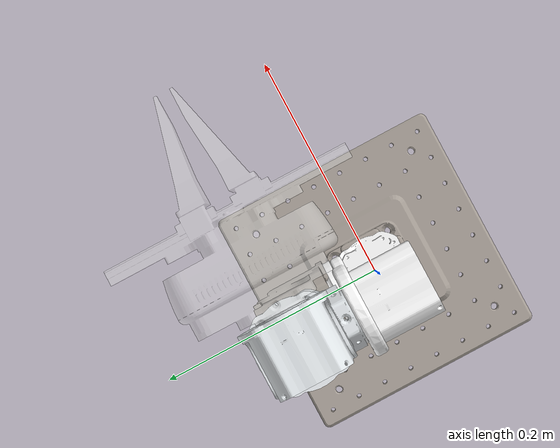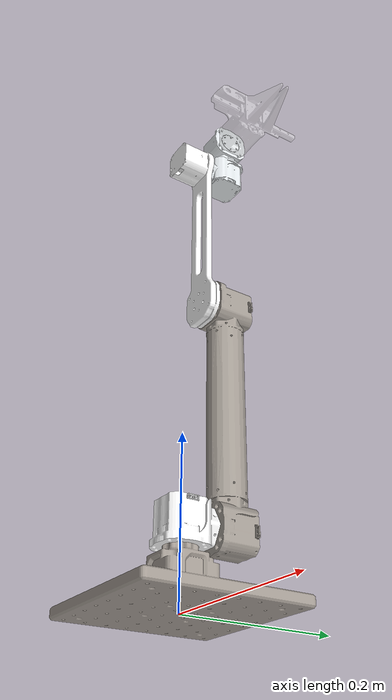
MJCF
<mujoco model="Ragtime_Wolfgang_URDF_fine">
  <compiler angle="radian" meshdir="meshes"/>
  <statistic meansize="0.110998" extent="0.957842" center="-0.000151497 0.0360376 0.337068"/>
  <option timestep="0.001" gravity="0 0 -9.81">
      <flag contact="enable" energy="enable" gravity="enable"/>
  </option>

  <asset>
    <mesh name="base_link" file="base_link.STL"/>
    <mesh name="link1" file="link1.STL"/>
    <mesh name="link2" file="link2.STL"/>
    <mesh name="link3" file="link3.STL"/>
    <mesh name="link4" file="link4.STL"/>
    <mesh name="link5" file="link5.STL"/>
    <mesh name="link6" file="link6.STL"/>
  </asset>

  <worldbody>
    <geom type="mesh" contype="0" conaffinity="0" group="1" density="0" rgba="0.65098 0.61961 0.58824 1" mesh="base_link"/>
    <geom type="mesh" rgba="0.65098 0.61961 0.58824 1" mesh="base_link"/>
    <body name="link1" pos="0 0 0.068">
      <inertial pos="-0.00014488 0.0025938 0.026353" quat="0.636514 0.311587 -0.660071 0.249137" mass="0.74562" diaginertia="0.000283194 0.00019131 0.000187406"/>
      <joint name="joint1" pos="0 0 0" axis="0 0 1" range="-3.14 3.14" damping="0.01"/>
      <geom type="mesh" contype="0" conaffinity="0" group="1" density="0" rgba="1 1 1 1" mesh="link1"/>
      <geom type="mesh" rgba="1 1 1 1" mesh="link1"/>
      <body name="link2" pos="-9.827e-05 0.03645 0.025" quat="0.999999 0 0 0.001348">
        <inertial pos="-0.00012317 0.026213 0.14831" quat="0.70839 -0.00273927 -0.00319719 0.705809" mass="1.6638" diaginertia="0.0011232 0.000937561 0.000468487"/>
        <joint name="joint2" pos="0 0 0" axis="0 -1 0" range="-3.14 3.14" damping="0.01"/>
        <geom type="mesh" contype="0" conaffinity="0" group="1" density="0" rgba="0.64706 0.61961 0.58824 1" mesh="link2"/>
        <geom type="mesh" rgba="0.64706 0.61961 0.58824 1" mesh="link2"/>
        <body name="link3" pos="-6.7401e-05 0 0.2969" quat="0.999999 0 0 -0.001348">
          <inertial pos="-3.3487e-05 -0.021611 0.15493" quat="0.706861 -6.36889e-05 -0.000186269 0.707352" mass="0.50897" diaginertia="0.001275 0.0011976 9.61218e-05"/>
          <joint name="joint3" pos="0 0 0" axis="0 1 0" range="-3.14 3.14" damping="0.01"/>
          <geom type="mesh" contype="0" conaffinity="0" group="1" density="0" rgba="1 1 1 1" mesh="link3"/>
          <geom type="mesh" rgba="1 1 1 1" mesh="link3"/>
          <body name="link4" pos="0 -0.008 0.23">
            <inertial pos="2.4351e-05 0.030228 0.0022174" quat="0.131182 0.693487 -0.186754 0.683367" mass="0.32872" diaginertia="9.97614e-05 6.33662e-05 6.18094e-05"/>
            <joint name="joint4" pos="0 0 0" axis="0 1 0" range="-3.14 3.14" damping="0.01"/>
            <geom type="mesh" contype="0" conaffinity="0" group="1" density="0" rgba="0.89804 0.91765 0.92941 1" mesh="link4"/>
            <geom type="mesh" rgba="0.89804 0.91765 0.92941 1" mesh="link4"/>
            <body name="link5" pos="0 0.033201 0.0205">
              <inertial pos="0.00221735 2.43538e-05 0.0352279" quat="0.847575 0.52917 0.0328629 -0.0227021" mass="0.328724" diaginertia="9.97598e-05 6.33667e-05 6.18113e-05"/>
              <joint name="joint5" pos="0 0 0" axis="0 0 1" range="-3.14 3.14" damping="0.01"/>
              <geom type="mesh" contype="0" conaffinity="0" group="1" density="0" rgba="0.898039 0.917647 0.929412 1" mesh="link5"/>
              <geom type="mesh" rgba="0.898039 0.917647 0.929412 1" mesh="link5"/>
              <body name="link6" pos="0.0205 0 0.038201">
                <inertial pos="0.0392242 -0.000160289 0.00758983" quat="0.703185 0.710999 -0.00320562 0.00108079" mass="0.54347" diaginertia="0.000239805 0.000187094 9.12767e-05"/>
                <joint name="joint6" pos="0 0 0" axis="1 0 0" range="-3.14 3.14" damping="0.01"/>
                <geom type="mesh" contype="0" conaffinity="0" group="1" density="0" rgba="0.937255 0.937255 0.937255 0.4" mesh="link6"/>
                <geom type="mesh" rgba="0.937255 0.937255 0.937255 0.4" mesh="link6"/>
              </body>
            </body>
          </body>
        </body>
      </body>
    </body>
  </worldbody>

  <actuator>
        <motor name="a1" ctrllimited="true" ctrlrange="-16.0 16.0"  joint="joint1"/>
        <motor name="a2" ctrllimited="true" ctrlrange="-16.0 16.0"  joint="joint2"/>
        <motor name="a3" ctrllimited="true" ctrlrange="-16.0 16.0"  joint="joint3"/>
        <motor name="a4" ctrllimited="true" ctrlrange="-6.0 6.0"  joint="joint4"/>
        <motor name="a5" ctrllimited="true" ctrlrange="-6.0 6.0"  joint="joint5"/>
        <motor name="a6" ctrllimited="true" ctrlrange="-6.0 6.0"  joint="joint6"/>
    </actuator>
</mujoco>
